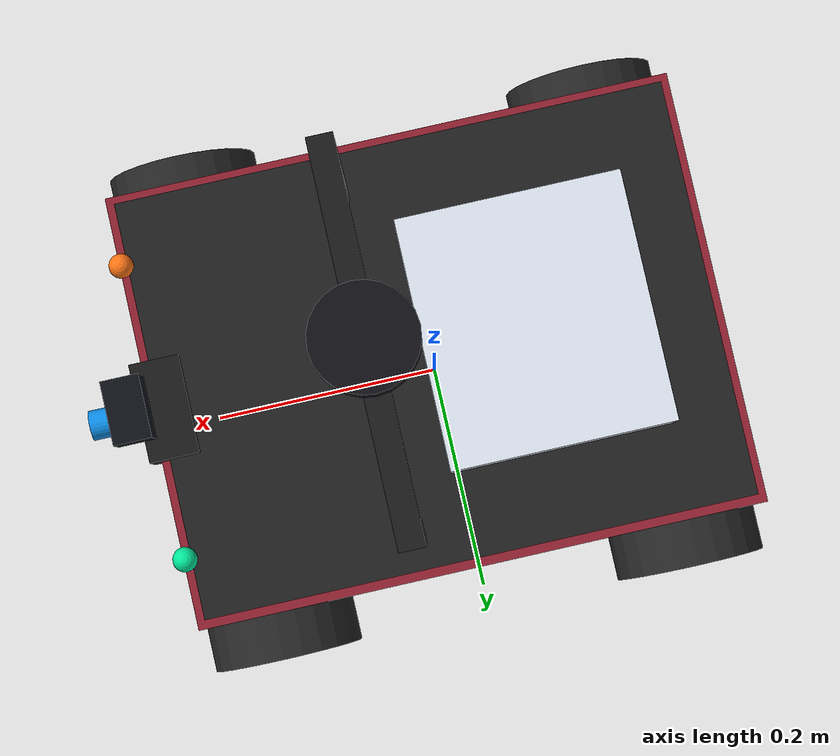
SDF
<?xml version="1.0"?>
<sdf version="1.9">
  <model name="phoenix">
    <pose>0 0 0 0 0 0</pose>
    <self_collide>false</self_collide>
    <allow_auto_disable>false</allow_auto_disable>

    <!-- Base Footprint (Ground Projection) -->
    <link name="base_footprint">
      <inertial>
        <mass>0.001</mass>
        <inertia>
          <ixx>0.00001</ixx><iyy>0.00001</iyy><izz>0.00001</izz>
        </inertia>
      </inertial>
    </link>

    <!-- Main Chassis: Deep Metallic Crimson Anodized Livery -->
    <link name="base_link">
      <pose>0 0 0.13 0 0 0</pose>
      <inertial>
        <mass>5.4</mass>
        <inertia>
          <ixx>0.07471</ixx><iyy>0.11530</iyy><izz>0.15402</izz>
        </inertia>
      </inertial>

      <!-- Main Hull Collision -->
      <collision name="collision_hull">
        <pose>0 0 0.02 0 0 0</pose>
        <geometry><box><size>0.465 0.355 0.20</size></box></geometry>
      </collision>

      <!-- Main Hull Visual: Deep Metallic Crimson -->
      <visual name="visual_hull">
        <pose>0 0 0.02 0 0 0</pose>
        <geometry><box><size>0.465 0.355 0.18</size></box></geometry>
        <material>
          <ambient>0.45 0.10 0.15 1.0</ambient>
          <diffuse>0.55 0.12 0.18 1.0</diffuse>
          <specular>0.60 0.30 0.35 1.0</specular>
        </material>
      </visual>

      <!-- Top Deck Armor Plate: Industrial Obsidian Black -->
      <visual name="visual_top_deck">
        <pose>0 0 0.115 0 0 0</pose>
        <geometry><box><size>0.45 0.34 0.01</size></box></geometry>
        <material>
          <ambient>0.08 0.08 0.08 1.0</ambient>
          <diffuse>0.12 0.12 0.12 1.0</diffuse>
          <specular>0.30 0.30 0.30 1.0</specular>
        </material>
      </visual>

      <!-- Brand Identity Accent Stripes: Molten Ember Orange -->
      <visual name="visual_flame_stripe_left">
        <pose>0 0.17 0.04 0 0 0</pose>
        <geometry><box><size>0.40 0.01 0.025</size></box></geometry>
        <material>
          <ambient>0.98 0.45 0.08 1.0</ambient>
          <diffuse>0.98 0.45 0.08 1.0</diffuse>
          <emissive>0.40 0.15 0.0 1.0</emissive>
        </material>
      </visual>
      <visual name="visual_flame_stripe_right">
        <pose>0 -0.17 0.04 0 0 0</pose>
        <geometry><box><size>0.40 0.01 0.025</size></box></geometry>
        <material>
          <ambient>0.98 0.45 0.08 1.0</ambient>
          <diffuse>0.98 0.45 0.08 1.0</diffuse>
          <emissive>0.40 0.15 0.0 1.0</emissive>
        </material>
      </visual>

      <!-- 2020 Aluminum Extrusion Arch - Left Column -->
      <visual name="arch_column_left">
        <pose>0.05 0.14 0.22 0 0 0</pose>
        <geometry><box><size>0.02 0.02 0.20</size></box></geometry>
        <material>
          <ambient>0.08 0.08 0.08 1.0</ambient>
          <diffuse>0.10 0.10 0.10 1.0</diffuse>
          <specular>0.25 0.25 0.25 1.0</specular>
        </material>
      </visual>

      <!-- 2020 Aluminum Extrusion Arch - Right Column -->
      <visual name="arch_column_right">
        <pose>0.05 -0.14 0.22 0 0 0</pose>
        <geometry><box><size>0.02 0.02 0.20</size></box></geometry>
        <material>
          <ambient>0.08 0.08 0.08 1.0</ambient>
          <diffuse>0.10 0.10 0.10 1.0</diffuse>
          <specular>0.25 0.25 0.25 1.0</specular>
        </material>
      </visual>

      <!-- 2020 Aluminum Extrusion Arch - Top Crossbeam -->
      <visual name="arch_crossbeam">
        <pose>0.05 0 0.32 0 0 0</pose>
        <geometry><box><size>0.02 0.30 0.02</size></box></geometry>
        <material>
          <ambient>0.08 0.08 0.08 1.0</ambient>
          <diffuse>0.10 0.10 0.10 1.0</diffuse>
          <specular>0.25 0.25 0.25 1.0</specular>
        </material>
      </visual>

      <!-- Okdo LD06 TOF LiDAR Cylinder Base & Turret -->
      <visual name="lidar_turret_housing">
        <pose>0.05 0 0.345 0 0 0</pose>
        <geometry><cylinder><radius>0.04</radius><length>0.035</length></cylinder></geometry>
        <material>
          <ambient>0.04 0.04 0.05 1.0</ambient>
          <diffuse>0.06 0.06 0.08 1.0</diffuse>
          <specular>0.80 0.80 0.80 1.0</specular>
        </material>
      </visual>
      <visual name="lidar_optical_slot">
        <pose>0.05 0 0.355 0 0 0</pose>
        <geometry><cylinder><radius>0.038</radius><length>0.012</length></cylinder></geometry>
        <material>
          <ambient>0.02 0.55 0.90 1.0</ambient>
          <diffuse>0.02 0.55 0.90 1.0</diffuse>
          <emissive>0.01 0.35 0.65 1.0</emissive>
        </material>
      </visual>

      <!-- 24V Diaphragm Pump Reservoir Enclosure -->
      <visual name="pump_enclosure">
        <pose>-0.08 0 0.14 0 0 0</pose>
        <geometry><box><size>0.18 0.20 0.08</size></box></geometry>
        <material>
          <ambient>0.85 0.88 0.92 1.0</ambient>
          <diffuse>0.85 0.88 0.92 1.0</diffuse>
          <specular>0.90 0.90 0.95 1.0</specular>
        </material>
      </visual>

      <!-- Front 2-DOF Gimbal Base Bracket -->
      <visual name="gimbal_base_bracket">
        <pose>0.22 0 0.11 0 0 0</pose>
        <geometry><box><size>0.04 0.08 0.04</size></box></geometry>
        <material>
          <ambient>0.08 0.08 0.08 1.0</ambient>
          <diffuse>0.10 0.10 0.10 1.0</diffuse>
        </material>
      </visual>

      <!-- Suppression Nozzle Tip: Aerospace Sky-Blue -->
      <visual name="nozzle_tip">
        <pose>0.26 0 0.12 0 1.5708 0</pose>
        <geometry><cylinder><radius>0.012</radius><length>0.04</length></cylinder></geometry>
        <material>
          <ambient>0.02 0.45 0.75 1.0</ambient>
          <diffuse>0.05 0.55 0.90 1.0</diffuse>
          <specular>0.70 0.85 0.95 1.0</specular>
        </material>
      </visual>

      <!-- Status LED Indicators (Cybernetic Glow) -->
      <visual name="status_led_nav">
        <pose>0.23 0.12 0.12 0 0 0</pose>
        <geometry><sphere><radius>0.01</radius></sphere></geometry>
        <material>
          <ambient>0.0 0.9 0.6 1.0</ambient>
          <diffuse>0.0 0.9 0.6 1.0</diffuse>
          <emissive>0.0 0.9 0.6 1.0</emissive>
        </material>
      </visual>
      <visual name="status_led_hazard">
        <pose>0.23 -0.12 0.12 0 0 0</pose>
        <geometry><sphere><radius>0.01</radius></sphere></geometry>
        <material>
          <ambient>0.98 0.45 0.08 1.0</ambient>
          <diffuse>0.98 0.45 0.08 1.0</diffuse>
          <emissive>0.98 0.45 0.08 1.0</emissive>
        </material>
      </visual>
    </link>

    <joint name="base_footprint_joint" type="fixed">
      <parent>base_footprint</parent>
      <child>base_link</child>
    </joint>

    <!-- Wheels: Sky-Blue Metallic Hubs with Industrial Gripped Tires -->
    <!-- Front Left Wheel -->
    <link name="front_left_wheel">
      <pose relative_to="base_link">0.18 0.19 -0.065 0 0 0</pose>
      <inertial>
        <mass>0.25</mass>
        <inertia><ixx>0.0003</ixx><iyy>0.0005</iyy><izz>0.0003</izz></inertia>
      </inertial>
      <collision name="collision">
        <pose>0 0 0 1.5708 0 0</pose>
        <geometry><cylinder><radius>0.065</radius><length>0.06</length></cylinder></geometry>
        <surface>
          <friction>
            <ode>
              <mu>1.2</mu>
              <mu2>0.08</mu2>
              <fdir1>1 0 0</fdir1>
              <slip1>0.0001</slip1>
              <slip2>0.05</slip2>
            </ode>
          </friction>
        </surface>
      </collision>
      <visual name="tire">
        <pose>0 0 0 1.5708 0 0</pose>
        <geometry><cylinder><radius>0.065</radius><length>0.06</length></cylinder></geometry>
        <material>
          <ambient>0.10 0.10 0.10 1.0</ambient>
          <diffuse>0.15 0.15 0.15 1.0</diffuse>
        </material>
      </visual>
      <visual name="hub">
        <pose>0 0 0 1.5708 0 0</pose>
        <geometry><cylinder><radius>0.045</radius><length>0.062</length></cylinder></geometry>
        <material>
          <ambient>0.02 0.45 0.75 1.0</ambient>
          <diffuse>0.05 0.55 0.90 1.0</diffuse>
          <specular>0.70 0.85 0.95 1.0</specular>
        </material>
      </visual>
    </link>

    <!-- Rear Left Wheel -->
    <link name="rear_left_wheel">
      <pose relative_to="base_link">-0.18 0.19 -0.065 0 0 0</pose>
      <inertial>
        <mass>0.25</mass>
        <inertia><ixx>0.0003</ixx><iyy>0.0005</iyy><izz>0.0003</izz></inertia>
      </inertial>
      <collision name="collision">
        <pose>0 0 0 1.5708 0 0</pose>
        <geometry><cylinder><radius>0.065</radius><length>0.06</length></cylinder></geometry>
        <surface>
          <friction>
            <ode>
              <mu>1.2</mu>
              <mu2>0.08</mu2>
              <fdir1>1 0 0</fdir1>
              <slip1>0.0001</slip1>
              <slip2>0.05</slip2>
            </ode>
          </friction>
        </surface>
      </collision>
      <visual name="tire">
        <pose>0 0 0 1.5708 0 0</pose>
        <geometry><cylinder><radius>0.065</radius><length>0.06</length></cylinder></geometry>
        <material>
          <ambient>0.10 0.10 0.10 1.0</ambient>
          <diffuse>0.15 0.15 0.15 1.0</diffuse>
        </material>
      </visual>
      <visual name="hub">
        <pose>0 0 0 1.5708 0 0</pose>
        <geometry><cylinder><radius>0.045</radius><length>0.062</length></cylinder></geometry>
        <material>
          <ambient>0.02 0.45 0.75 1.0</ambient>
          <diffuse>0.05 0.55 0.90 1.0</diffuse>
          <specular>0.70 0.85 0.95 1.0</specular>
        </material>
      </visual>
    </link>

    <!-- Front Right Wheel -->
    <link name="front_right_wheel">
      <pose relative_to="base_link">0.18 -0.19 -0.065 0 0 0</pose>
      <inertial>
        <mass>0.25</mass>
        <inertia><ixx>0.0003</ixx><iyy>0.0005</iyy><izz>0.0003</izz></inertia>
      </inertial>
      <collision name="collision">
        <pose>0 0 0 1.5708 0 0</pose>
        <geometry><cylinder><radius>0.065</radius><length>0.06</length></cylinder></geometry>
        <surface>
          <friction>
            <ode>
              <mu>1.2</mu>
              <mu2>0.08</mu2>
              <fdir1>1 0 0</fdir1>
              <slip1>0.0001</slip1>
              <slip2>0.05</slip2>
            </ode>
          </friction>
        </surface>
      </collision>
      <visual name="tire">
        <pose>0 0 0 1.5708 0 0</pose>
        <geometry><cylinder><radius>0.065</radius><length>0.06</length></cylinder></geometry>
        <material>
          <ambient>0.10 0.10 0.10 1.0</ambient>
          <diffuse>0.15 0.15 0.15 1.0</diffuse>
        </material>
      </visual>
      <visual name="hub">
        <pose>0 0 0 1.5708 0 0</pose>
        <geometry><cylinder><radius>0.045</radius><length>0.062</length></cylinder></geometry>
        <material>
          <ambient>0.02 0.45 0.75 1.0</ambient>
          <diffuse>0.05 0.55 0.90 1.0</diffuse>
          <specular>0.70 0.85 0.95 1.0</specular>
        </material>
      </visual>
    </link>

    <!-- Rear Right Wheel -->
    <link name="rear_right_wheel">
      <pose relative_to="base_link">-0.18 -0.19 -0.065 0 0 0</pose>
      <inertial>
        <mass>0.25</mass>
        <inertia><ixx>0.0003</ixx><iyy>0.0005</iyy><izz>0.0003</izz></inertia>
      </inertial>
      <collision name="collision">
        <pose>0 0 0 1.5708 0 0</pose>
        <geometry><cylinder><radius>0.065</radius><length>0.06</length></cylinder></geometry>
        <surface>
          <friction>
            <ode>
              <mu>1.2</mu>
              <mu2>0.08</mu2>
              <fdir1>1 0 0</fdir1>
              <slip1>0.0001</slip1>
              <slip2>0.05</slip2>
            </ode>
          </friction>
        </surface>
      </collision>
      <visual name="tire">
        <pose>0 0 0 1.5708 0 0</pose>
        <geometry><cylinder><radius>0.065</radius><length>0.06</length></cylinder></geometry>
        <material>
          <ambient>0.10 0.10 0.10 1.0</ambient>
          <diffuse>0.15 0.15 0.15 1.0</diffuse>
        </material>
      </visual>
      <visual name="hub">
        <pose>0 0 0 1.5708 0 0</pose>
        <geometry><cylinder><radius>0.045</radius><length>0.062</length></cylinder></geometry>
        <material>
          <ambient>0.02 0.45 0.75 1.0</ambient>
          <diffuse>0.05 0.55 0.90 1.0</diffuse>
          <specular>0.70 0.85 0.95 1.0</specular>
        </material>
      </visual>
    </link>

    <!-- Revolute Drive Wheel Joints -->
    <joint name="front_left_wheel_joint" type="revolute">
      <parent>base_link</parent>
      <child>front_left_wheel</child>
      <axis><xyz>0 1 0</xyz><limit><lower>-1e16</lower><upper>1e16</upper></limit><dynamics><damping>0.01</damping><friction>0.01</friction></dynamics></axis>
    </joint>
    <joint name="rear_left_wheel_joint" type="revolute">
      <parent>base_link</parent>
      <child>rear_left_wheel</child>
      <axis><xyz>0 1 0</xyz><limit><lower>-1e16</lower><upper>1e16</upper></limit><dynamics><damping>0.01</damping><friction>0.01</friction></dynamics></axis>
    </joint>
    <joint name="front_right_wheel_joint" type="revolute">
      <parent>base_link</parent>
      <child>front_right_wheel</child>
      <axis><xyz>0 1 0</xyz><limit><lower>-1e16</lower><upper>1e16</upper></limit><dynamics><damping>0.01</damping><friction>0.01</friction></dynamics></axis>
    </joint>
    <joint name="rear_right_wheel_joint" type="revolute">
      <parent>base_link</parent>
      <child>rear_right_wheel</child>
      <axis><xyz>0 1 0</xyz><limit><lower>-1e16</lower><upper>1e16</upper></limit><dynamics><damping>0.01</damping><friction>0.01</friction></dynamics></axis>
    </joint>

    <!-- FPV Camera Sensor Link -->
    <link name="camera_link">
      <pose relative_to="base_link">0.24 0 0.19 0 0 0</pose>
      <visual name="visual">
        <geometry><box><size>0.03 0.05 0.03</size></box></geometry>
        <material>
          <ambient>0.05 0.06 0.09 1</ambient>
          <diffuse>0.05 0.06 0.09 1</diffuse>
        </material>
      </visual>
      <sensor name="camera_sensor" type="camera">
        <always_on>true</always_on>
        <update_rate>30</update_rate>
        <visualize>true</visualize>
        <topic>/camera/image_raw</topic>
        <gz_frame_id>camera_link</gz_frame_id>
        <camera>
          <horizontal_fov>1.309</horizontal_fov>
          <image>
            <width>640</width>
            <height>480</height>
            <format>R8G8B8</format>
          </image>
          <clip>
            <near>0.05</near>
            <far>50.0</far>
          </clip>
        </camera>
      </sensor>
    </link>
    <joint name="camera_joint" type="fixed"><parent>base_link</parent><child>camera_link</child></joint>

    <!-- LiDAR Sensor Link (Okdo LD06 TOF) -->
    <link name="lidar_link">
      <pose relative_to="base_link">0.05 0 0.355 0 0 0</pose>
      <sensor name="lidar_sensor" type="gpu_lidar">
        <always_on>true</always_on>
        <visualize>true</visualize>
        <update_rate>10</update_rate>
        <topic>/scan</topic>
        <gz_frame_id>lidar_link</gz_frame_id>
        <ray>
          <scan>
            <horizontal>
              <samples>360</samples>
              <resolution>1</resolution>
              <min_angle>0</min_angle>
              <max_angle>6.283185</max_angle>
            </horizontal>
          </scan>
          <range>
            <min>0.05</min>
            <max>12.0</max>
            <resolution>0.01</resolution>
          </range>
        </ray>
      </sensor>
    </link>
    <joint name="lidar_joint" type="fixed"><parent>base_link</parent><child>lidar_link</child></joint>

    <!-- 4-Wheel Differential Drive Plugin -->
    <plugin filename="gz-sim-diff-drive-system" name="gz::sim::systems::DiffDrive">
      <left_joint>front_left_wheel_joint</left_joint>
      <left_joint>rear_left_wheel_joint</left_joint>
      <right_joint>front_right_wheel_joint</right_joint>
      <right_joint>rear_right_wheel_joint</right_joint>
      <wheel_separation>0.38</wheel_separation>
      <wheel_radius>0.065</wheel_radius>
      <odom_publish_frequency>30</odom_publish_frequency>
      <odom_topic>/odom</odom_topic>
      <topic>/cmd_vel</topic>
      <frame_id>odom</frame_id>
      <child_frame_id>base_footprint</child_frame_id>
    </plugin>
  </model>
</sdf>
